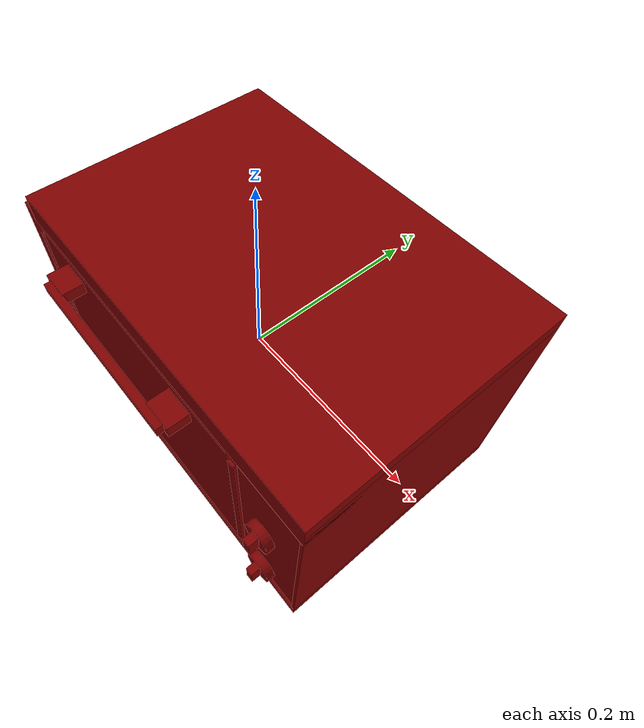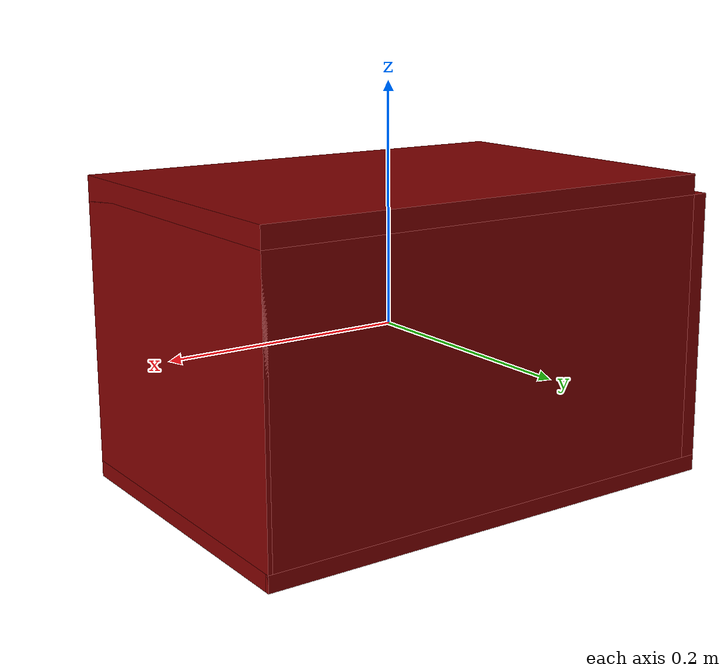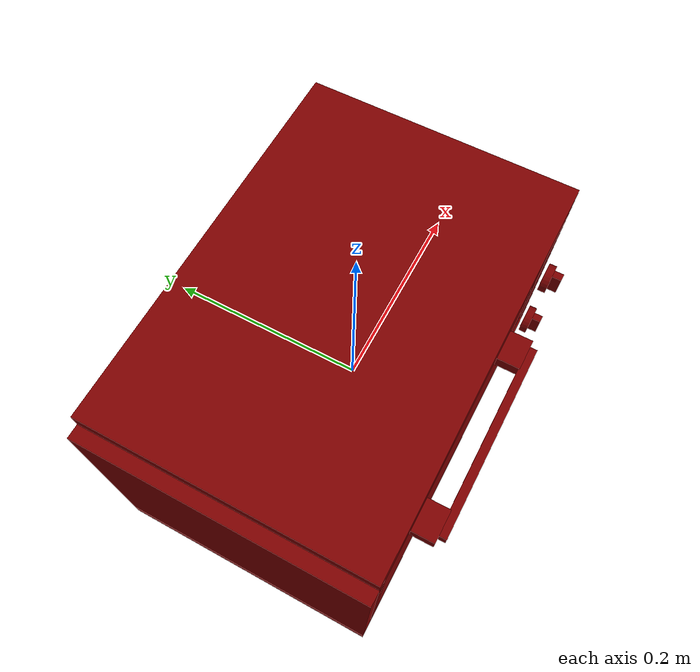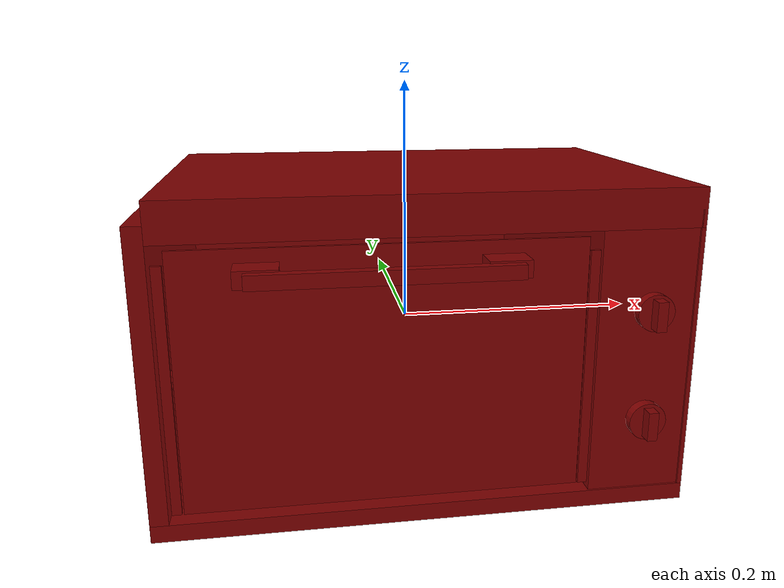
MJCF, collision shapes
<?xml version='1.0' encoding='UTF-8'?>
<mujoco model="model">
  <option timestep="0.002" gravity="0.0 0.0 -9.81"/>
  <compiler angle="radian"/>
  <asset>
    <mesh file="visuals/Body001.obj" name="Body001_vis"/>
    <mesh file="visuals/Door001.obj" name="Door001_vis"/>
    <mesh file="visuals/Door001_Clear.obj" name="Door001_Clear_vis"/>
    <mesh file="visuals/Knob001.obj" name="Knob001_vis"/>
    <mesh file="visuals/Knob002.obj" name="Knob002_vis"/>
    <mesh file="visuals/Shelf001.obj" name="Shelf001_vis"/>
    <texture file="visuals/T_BC001.png" name="Body001_material" type="2d"/>
    <material name="Body001_material" rgba="1 1 1 1.0" texture="Body001_material" shininess="2" specular="2"/>
    <texture file="visuals/T_BC001.png" name="Door001_material" type="2d"/>
    <material name="Door001_material" rgba="1 1 1 1.0" texture="Door001_material" shininess="0.2512328028678894" specular="0.3103448502657381"/>
    <texture file="visuals/T_BC001.png" name="Door001_Clear_material" type="2d"/>
    <material name="Door001_Clear_material" rgba="1 1 1 0.75" texture="Door001_Clear_material" shininess="0.2512328028678894" specular="0.3103448502657381"/>
    <texture file="visuals/T_BC001.png" name="Knob001_material" type="2d"/>
    <material name="Knob001_material" rgba="1 1 1 1.0" texture="Knob001_material" shininess="1" specular="1"/>
    <texture file="visuals/T_BC001.png" name="Knob002_material" type="2d"/>
    <material name="Knob002_material" rgba="1 1 1 1.0" texture="Knob002_material" shininess="1" specular="1"/>
    <texture file="visuals/T_BC001.png" name="Shelf001_material" type="2d"/>
    <material name="Shelf001_material" rgba="1 1 1 1.0" texture="Shelf001_material" shininess="15" specular="15"/>
  </asset>
  <default>
    <default class="visual">
      <geom conaffinity="0" contype="0" group="1" type="mesh"/>
    </default>
    <default class="collision">
      <geom group="0" rgba="0.5 0 0 0.5"/>
    </default>
    <default class="spawn">
      <geom group="0" rgba="1 1 1 0.5" contype="0" conaffinity="0"/>
      <site group="0" rgba="1 1 1 0.5"/>
    </default>
    <default class="region">
      <geom group="1" conaffinity="0" contype="0" rgba="0 1 0 0"/>
    </default>
  </default>
  <worldbody>
    <body>
      <body name="object">
        <geom mesh="Body001_vis" type="mesh" solimp="0.998 0.998 0.001" solref="0.001 1" friction="0.95 0.3 0.1" class="visual" material="Body001_material"/>
        <geom class="collision" type="box" pos="-0.19996748864650726 0.014820121228694916 -0.0017713289707899094" size="0.006872917525470257 0.1380470246076584 0.1117958128452301" quat="1.0 0.0 0.0 0.0" density="1000.0"/>
        <geom class="collision" type="box" pos="0.20504964888095856 0.014820121228694916 -0.0017713289707899094" size="0.0017908348236232996 0.1380470246076584 0.11179578304290771" quat="1.0 0.0 0.0 0.0" density="1000.0"/>
        <geom class="collision" type="box" pos="0.16603650152683258 0.012244809418916702 -0.001771334558725357" size="0.03722234070301056 0.1337968111038208 0.11179576069116592" quat="1.0 0.0 0.0 0.0" density="1000.0"/>
        <geom class="collision" type="box" pos="0.006832923740148544 0.014820121228694916 0.11172142624855042" size="0.20000754296779633 0.1380470246076584 0.015136580914258957" quat="1.0 0.0 0.0 0.0" density="1000.0"/>
        <geom class="collision" type="box" pos="0.006832923740148544 0.15100598335266113 -0.008513309061527252" size="0.20000754296779633 0.001861140364781022 0.11853767931461334" quat="1.0 0.0 0.0 0.0" density="1000.0"/>
        <geom class="collision" type="box" pos="0.0008620992302894592 0.027619149535894394 0.11586510390043259" size="0.17700891196727753 0.10812178254127502 0.005841147620230913" quat="1.0 0.0 0.0 0.0" density="1000.0"/>
        <geom class="collision" type="box" pos="3.3527612686157227e-08 0.014820121228694916 -0.12031829357147217" size="0.2068404108285904 0.1380470246076584 0.0067516714334487915" quat="1.0 0.0 0.0 0.0" density="1000.0"/>
        <geom class="collision" type="box" pos="-0.19096924364566803 0.02845849096775055 -0.021467335522174835" size="0.002511232625693083 0.11970851570367813 0.0011179364519193769" quat="1.0 0.0 0.0 0.0" density="1000.0"/>
        <geom class="collision" type="box" pos="0.12606173753738403 0.02845849096775055 -0.021467335522174835" size="0.002942856168374419 0.11970851570367813 0.0011179364519193769" quat="1.0 0.0 0.0 0.0" density="1000.0"/>
        <body name="Door001">
          <joint axis="1.0 0.0 0.0" pos="-0.02899169921875 -0.12169170379638672 -0.11031129956245422" limited="true" name="Door001_joint" range="0.0 1.5707963267948966" type="hinge" damping="1" frictionloss="1" armature=".01" stiffness="0.5" springref="-0.5"/>
          <geom mesh="Door001_vis" type="mesh" solimp="0.998 0.998 0.001" solref="0.001 1" friction="0.95 0.3 0.1" class="visual" material="Door001_material"/>
          <geom class="collision" type="box" pos="-0.1867462545633316 -0.12198945134878159 -0.011467289179563522" size="0.003708417061716318 0.0013533681631088257 0.09391413629055023" quat="1.0 0.0 0.0 0.0" density="1000.0"/>
          <geom class="collision" type="box" pos="0.12259900569915771 -0.12211621552705765 -0.011467289179563522" size="0.003708417061716318 0.0013533681631088257 0.09391413629055023" quat="1.0 0.0 0.0 0.0" density="1000.0"/>
          <geom class="collision" type="box" pos="-0.03293025493621826 -0.1480540633201599 0.07590055465698242" size="0.09564390778541565 0.00406538974493742 0.005290565546602011" quat="1.0 0.0 0.0 0.0" density="1000.0"/>
          <geom class="collision" type="box" pos="-0.12042461335659027 -0.13419899344444275 0.07618038356304169" size="0.01555483229458332 0.010972079820930958 0.006391073577105999" quat="1.0 0.0 0.0 0.0" density="1000.0"/>
          <geom class="collision" type="box" pos="0.05319491773843765 -0.13419899344444275 0.07618038356304169" size="0.01555483229458332 0.010972079820930958 0.006391072180122137" quat="1.0 0.0 0.0 0.0" density="1000.0"/>
          <body name="Door001_Clear">
            <geom mesh="Door001_Clear_vis" type="mesh" solimp="0.998 0.998 0.001" solref="0.001 1" friction="0.95 0.3 0.1" class="visual" material="Door001_Clear_material"/>
            <geom class="collision" type="box" pos="-0.03197433799505234 -0.12193150818347931 -0.006361823529005051" size="0.14959894120693207 0.0012954279081895947 0.0990196093916893" quat="1.0 0.0 0.0 0.0" density="1000.0"/>
          </body>
        </body>
        <body name="Knob001">
          <joint axis="0.0 1.0 0.0" pos="0.16768665611743927 -0.1363096386194229 0.03500434383749962" limited="true" name="Knob001_joint" range="0.0 4.799655442984406" type="hinge" damping="0.05" armature="0.001"/>
          <geom mesh="Knob001_vis" type="mesh" solimp="0.998 0.998 0.001" solref="0.001 1" friction="0.95 0.3 0.1" class="visual" material="Knob001_material"/>
          <geom class="collision" type="cylinder" pos="0.16768665611743927 -0.13123619556427002 0.035649411380290985" size="0.014274309389293194 0.003862633602693677" quat="0.7071067094802856 0.70710688829422 0.0 0.0" density="1000.0"/>
          <geom class="collision" type="box" pos="0.16768665611743927 -0.13967591524124146 0.035649411380290985" size="0.0039178249426186085 0.004963623359799385 0.011389716528356075" quat="1.0 0.0 0.0 0.0" density="1000.0"/>
        </body>
        <body name="Knob002">
          <joint axis="0.0 1.0 0.0" pos="0.16768665611743927 -0.1363096386194229 -0.05063324421644211" limited="true" name="Knob002_joint" range="0.0 3.9269908169872414" type="hinge" damping="0.05" armature="0.001"/>
          <geom mesh="Knob002_vis" type="mesh" solimp="0.998 0.998 0.001" solref="0.001 1" friction="0.95 0.3 0.1" class="visual" material="Knob002_material"/>
          <geom class="collision" type="cylinder" pos="0.16768665611743927 -0.13123619556427002 -0.051278311759233475" size="0.014600664377212524 0.003950945567339659" quat="0.7071067094802856 0.70710688829422 0.0 0.0" density="1000.0"/>
          <geom class="collision" type="box" pos="0.16768665611743927 -0.13967591524124146 -0.051278311759233475" size="0.0039178249426186085 0.004963623359799385 0.011389716528356075" quat="1.9470718370939721e-07 -6.717942113709796e-08 1.0 1.3435884227419592e-07" density="1000.0"/>
        </body>
        <body name="Shelf001">
          <joint axis="0.0 -1.0 0.0" pos="-0.03456540405750275 0.052454523742198944 -0.016298560425639153" limited="true" name="Shelf001_joint" range="0.0 0.2" type="slide" damping="1" frictionloss="1" armature=".01" stiffness="0.05"/>
          <geom mesh="Shelf001_vis" type="mesh" solimp="0.998 0.998 0.001" solref="0.001 1" friction="0.95 0.3 0.1" class="visual" material="Shelf001_material"/>
          <geom class="collision" type="box" pos="-0.03193099796772003 0.02917960286140442 -0.017221704125404358" size="0.15977057814598083 0.11824823170900345 0.002225222997367382" quat="1.0 0.0 0.0 0.0" density="1000.0"/>
        </body>
        <geom class="region" name="reg_int" type="box" pos="-0.03214038163423538 0.01475897803902626 -0.008533772081136703" size="0.16095415502786636 0.13438650593161583 0.1050327979028225"/>
        <geom class="region" name="reg_main" type="box" pos="3.725290298461914e-09 0.013249218463897705 0.0" size="0.20684050023555756 0.13961797952651978 0.12706997990608215"/>
      </body>
    </body>
  </worldbody>
  <actuator>
    <motor name="Door001_joint_actuator" joint="Door001_joint" gear="30"/>
    <motor name="Knob001_joint_actuator" joint="Knob001_joint" gear="10"/>
    <motor name="Knob002_joint_actuator" joint="Knob002_joint" gear="10"/>
    <motor name="Shelf001_joint_actuator" joint="Shelf001_joint" gear="10"/>
  </actuator>
</mujoco>
